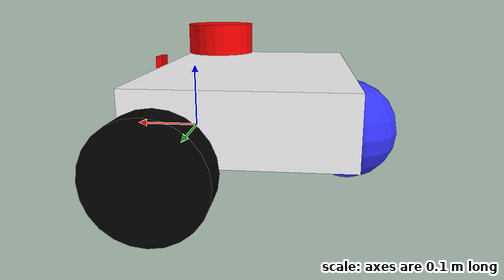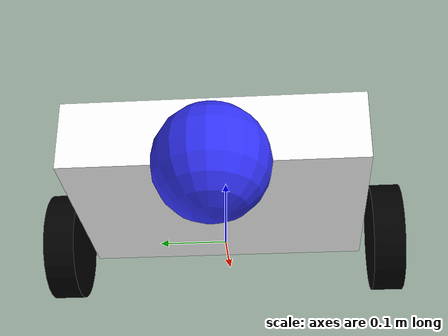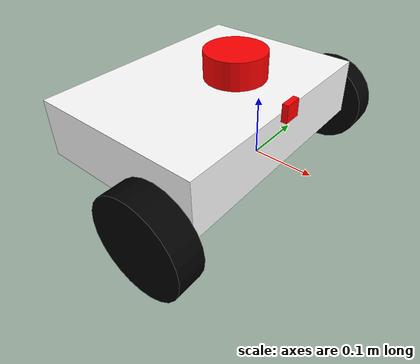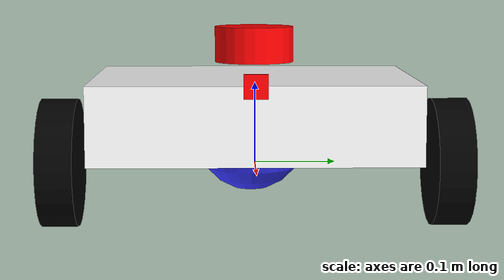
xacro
<?xml version="1.0"?>
<robot xmlns:xacro="http://www.ros.org/wiki/xacro"  name="robot">

    <xacro:include filename="robot_core.xacro"/>

    <xacro:include filename="ros2_control.xacro" />

    <xacro:include filename="lidar.xacro"/>
    <xacro:include filename="depth_camera.xacro"/>

</robot>

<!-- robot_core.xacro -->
<robot xmlns:xacro="http://www.ros.org/wiki/xacro">

    <xacro:include filename="inertial_macros.xacro"/>

    <material name="white">
        <color rgba="1 1 1 1" />
    </material>

    <material name="orange">
        <color rgba="1 0.3 0.1 1" />
    </material>

    <material name="blue">
        <color rgba="0.2 0.2 1 1" />
    </material>

    <material name="black">
        <color rgba="0 0 0 1" />
    </material>

    <material name="red">
        <color rgba="1 0 0 1" />
    </material>

    <!-- Base Link-->

    <link name="botwheel">
    </link>

    <!-- BASE_FOOTPRINT LINK -->

    <joint name="base_footprint_joint" type="fixed">
        <parent link="botwheel"/>
        <child link="base_footprint"/>
        <origin xyz="0 0 0" rpy="0 0 0"/>
    </joint>

    <link name="base_footprint">
    </link>

    <!-- Chassis Link -->

    <joint name="chassis_joint" type="fixed">
        <parent link="botwheel"/>
        <child link="chassis"/>
        <origin xyz= "0.05 0 0"/>
    </joint>

    <link name="chassis">
        <visual>
            <origin xyz="-0.15 0 0.05 "/>
            <geometry>
                <box size="0.3 0.415 0.1"/>
            </geometry>
            <material name="white"/>
        </visual>
        <collision>
            <origin xyz="-0.15 0 0.05 "/>
            <geometry>
                <box size="0.3 0.415 0.1"/>
            </geometry>
        </collision>
        <xacro:inertial_box mass="0.7" x="0.3" y="0.415" z="0.15">
            <origin xyz="-0.15 0 0.05 " rpy="0 0 0"/>
        </xacro:inertial_box>
    </link>

    <!-- Left Wheel Link -->

    <joint name="left_wheel_joint" type="continuous">
        <parent link="chassis"/>
        <child link="left_wheel"/>
        <origin xyz= "-0.05 0.2425 0" rpy="-${pi/2} 0 0"/>
        <axis xyz="0 0 1"/>
    </joint>

    <link name="left_wheel">
        <visual>
            <geometry>
                <cylinder radius="0.08" length="0.045"/>
            </geometry>
            <material name="black"/>
            <origin xyz="0 0 0"/>
        </visual>
        <collision>
            <geometry>
                <cylinder radius="0.08" length="0.045"/>
            </geometry>
        </collision>
        <xacro:inertial_cylinder mass="0.15" length="0.04" radius="0.05">
            <origin xyz="0 0 0" rpy="0 0 0"/>
        </xacro:inertial_cylinder>
    </link>

     <!-- Right Wheel Link -->
    <joint name="right_wheel_joint" type="continuous">
        <parent link="chassis"/>
        <child link="right_wheel"/>
        <origin xyz= "-0.05 -0.2425 0" rpy="${pi/2} 0 0"/>
        <axis xyz="0 0 -1"/>
    </joint>

    <link name="right_wheel">
        <visual>
            <geometry>
                <cylinder radius="0.08" length="0.045"/>
            </geometry>
            <material name="black"/>
            <origin xyz="0 0 0"/>
        </visual>
        <collision>
            <geometry>
                <cylinder radius="0.08" length="0.045"/>
            </geometry>
        </collision>
        <xacro:inertial_cylinder mass="0.15" length="0.04" radius="0.05">
            <origin xyz="0 0 0" rpy="0 0 0"/>
        </xacro:inertial_cylinder>
    </link>

    <!-- Caster Wheel -->

    <joint name="caster_wheel_joint" type="fixed">
        <parent link="chassis"/>
        <child link="caster_wheel"/>
        <origin xyz="-0.3 0 0"/>
    </joint>

    <link name="caster_wheel">
        <visual>
            <geometry>
                <sphere radius="0.08"/>
            </geometry>
            <material name="blue"/>
        </visual>
        <collision>
            <geometry>
                <sphere radius="0.08"/>
            </geometry>
        </collision>
        <xacro:inertial_sphere mass="0.1" radius="0.05">
            <origin xyz="0 0 0" rpy="0 0 0"/>
        </xacro:inertial_sphere>

    </link>

    <gazebo reference="caster_wheel">
        <mu1 value="0.0001"/>
        <mu2 value="0.0001"/>
    </gazebo>

</robot>

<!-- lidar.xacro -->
<robot xmlns:xacro="http://www.ros.org/wiki/xacro">

    <joint name="laser_joint" type="fixed">
        <parent link="chassis"/>
        <child link="laser_frame"/>
        <origin xyz="-0.095 0 0.145" rpy="0 0 0"/>
    </joint>

    <link name="laser_frame">
        <visual>
            <geometry>
                <cylinder radius="0.05" length="0.045"/>
            </geometry>
            <material name="red"/>
        </visual>
        <collision>
            <geometry>
                <cylinder radius="0.08" length="0.045"/>
            </geometry>
        </collision>
        <xacro:inertial_cylinder mass="0.15" length="0.04" radius="0.05">
            <origin xyz="0 0 0" rpy="0 0 0"/>
        </xacro:inertial_cylinder>
    </link>

    <gazebo reference="laser_frame">
        <material>Gazebo/Red</material>

        <sensor name="laser" type="gpu_lidar">
            <pose>0 0 0 0 0 0</pose>
            <topic>lidar</topic>
            <visualize>true</visualize>
            <update_rate>10</update_rate>
            <always_on>1</always_on>
            <ray>
                <scan>
                    <horizontal>
                        <samples>360</samples>
                        <resolution>1</resolution>
                        <min_angle>-3.14</min_angle>
                        <max_angle>3.14</max_angle>
                    </horizontal>
                </scan>
                <range>
                    <min>0.3</min>
                    <max>12</max>
                    <resolution>0.01</resolution>
                </range>
            </ray>
            <gz_frame_id>laser_frame</gz_frame_id>
        </sensor>

    </gazebo>

</robot>

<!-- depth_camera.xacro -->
<robot xmlns:xacro="http://www.ros.org/wiki/xacro">

    <joint name="camera_joint" type="fixed">
        <parent link="chassis"/>
        <child link="camera_link"/>
        <origin xyz="0.005 0 0.1" rpy="0 0 0"/>
    </joint>

    <link name="camera_link">
        <visual>
            <geometry>
                <box size="0.010 0.03 0.03"/>
            </geometry>
            <material name="red"/>
        </visual>
    </link>

    <joint name="camera_optical_joint" type="fixed">
        <origin xyz="0 0 0" rpy="${-pi/2} 0 ${-pi/2}" />
        <parent link="camera_link" />
        <child link="camera_link_optical" />
    </joint>

    <link name="camera_link_optical">
    </link>

    <gazebo reference="camera_link">
        <material>Gazebo/Red</material>

        <sensor name="rgbd_camera" type="rgbd_camera">
            <pose> 0 0 0 0 0 0 </pose>
            <visualize>true</visualize>
            <update_rate>30</update_rate>
            <enable_metrics>true</enable_metrics>
            <camera>
                <horizontal_fov>1.089</horizontal_fov>
                <image>
                    <format>R8G8B8</format>
                    <width>640</width>
                    <height>480</height>
                </image>
                <clip>
                    <near>0.05</near>
                    <far>8.0</far>
                </clip>
            </camera>
            <topic>rgbd_camera</topic>
            <gz_frame_id>camera_link</gz_frame_id>
        </sensor>

        <plugin
            filename="gz-sim-sensors-system"
            name="gz::sim::systems::Sensors">
            <render_engine>ogre2</render_engine>
        </plugin>

    </gazebo>

</robot>
